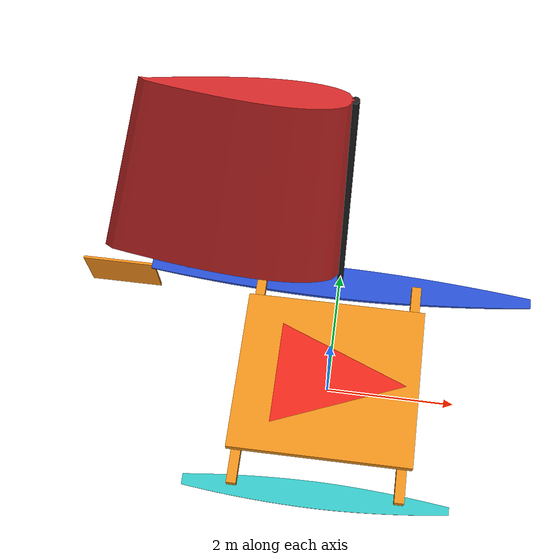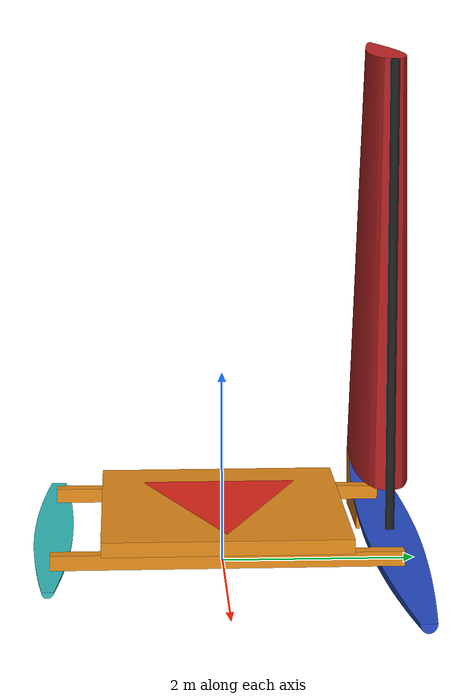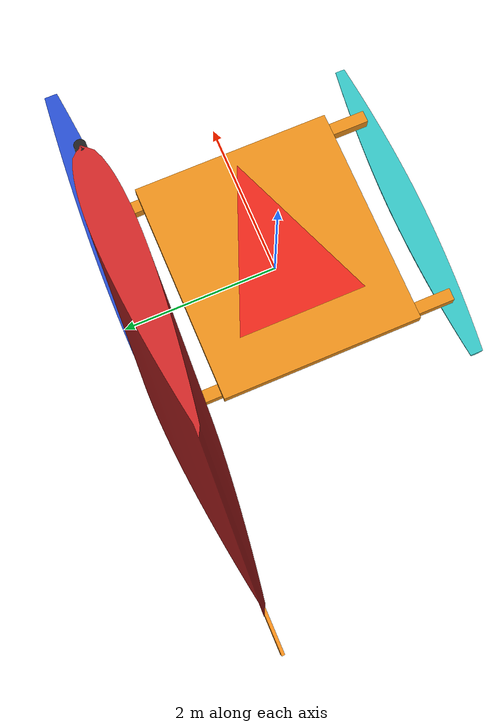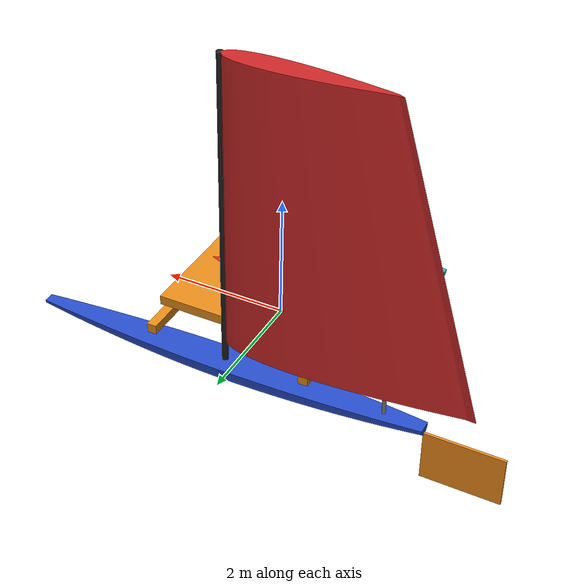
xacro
<?xml version="1.0"?>
<robot name="n3_urdf" xmlns:xacro="http://www.ros.org/wiki/xacro">

    <!-- MASSES -->
    <xacro:property name="hull_main_mass" value="50.0"/>
    <xacro:property name="hull_small_mass" value="25.0"/>
    <xacro:property name="deck_mass" value="18.0"/>
    <xacro:property name="cb_mass" value="8.0"/>
    <xacro:property name="mast_mass" value="3.0"/>
    <xacro:property name="sail_mass" value="40.0"/>
    <xacro:property name="rudder_mass" value="2.0"/>
    <xacro:property name="span" value="3.500"/>
    <xacro:property name="sail_chord" value="3.830"/>

    <!-- Z positions -->
    <xacro:property name="hull_top_z" value="0.315"/>
    <xacro:property name="beam_h" value="0.15"/>
    <xacro:property name="deck_h" value="0.15"/>

    <!-- INERTIE -->
    <xacro:macro name="box_inertia" params="m x y z">
        <inertial>
            <mass value="${m}"/>
            <inertia ixx="${m*(y*y+z*z)/12}" ixy="0" ixz="0"
                     iyy="${m*(x*x+z*z)/12}" iyz="0"
                     izz="${m*(x*x+y*y)/12}"/>
        </inertial>
    </xacro:macro>

    <xacro:macro name="cyl_inertia" params="m r h">
        <inertial>
            <mass value="${m}"/>
            <inertia ixx="${m*(3*r*r+h*h)/12}" ixy="0" ixz="0"
                     iyy="${m*(3*r*r+h*h)/12}" iyz="0"
                     izz="${m*r*r/2}"/>
        </inertial>
    </xacro:macro>

    <!-- ========================= BOAT LINK (DECK / URDF root) ========================= -->
    <!-- KDL warns about inertia on root link — harmless, ignore it -->
    <!-- Deck bottom on beam top = hull_top + beam_h -->
    <link name="boat_link">
        <xacro:box_inertia m="${deck_mass}" x="2.80" y="2.50" z="${deck_h}"/>
        <visual>
            <origin xyz="0 0 ${hull_top_z + beam_h + deck_h/2}" rpy="0 0 0"/>
            <geometry>
                <box size="2.80 2.50 ${deck_h}"/>
            </geometry>
            <material name="orange">
                <color rgba="0.90 0.55 0.10 1.0"/>
            </material>
        </visual>
        <collision>
            <origin xyz="0 0 ${hull_top_z + beam_h + deck_h/2}" rpy="0 0 0"/>
            <geometry>
                <box size="2.80 2.50 ${deck_h}"/>
            </geometry>
        </collision>
    </link>

    <!-- ========================= FLECHE DIRECTION (sur le pont) ========================= -->
    <link name="arrow_link">
        <inertial>
            <mass value="0.01"/>
            <inertia ixx="0.001" ixy="0" ixz="0" iyy="0.001" iyz="0" izz="0.001"/>
        </inertial>
        <visual>
            <geometry>
                <mesh filename="package://n3_urdf/meshes/arrow.dae"/>
            </geometry>
        </visual>
    </link>

    <joint name="arrow_joint" type="fixed">
        <parent link="boat_link"/>
        <child link="arrow_link"/>
        <!-- Sur le dessus du pont, deck top = hull_top + beam_h + deck_h -->
        <origin xyz="0 0 ${hull_top_z + beam_h + deck_h + 0.01}" rpy="0 0 0"/>
    </joint>

    <!-- ========================= FLOTTEUR PRINCIPAL (babord) ========================= -->
    <!-- Hull z=0 (local) = hull top = world hull_top_z -->
    <link name="hull_main_link">
        <xacro:box_inertia m="${hull_main_mass}" x="6.225" y="0.55" z="0.45"/>
        <visual>
            <geometry>
                <mesh filename="package://n3_urdf/meshes/hull_main.dae"/>
            </geometry>
        </visual>
        <collision>
            <geometry>
                <box size="6.225 0.55 0.45"/>
            </geometry>
        </collision>
    </link>

    <joint name="hull_main_joint" type="fixed">
        <parent link="boat_link"/>
        <child link="hull_main_link"/>
        <origin xyz="0 ${span/2} ${hull_top_z}" rpy="0 0 0"/>
    </joint>

    <!-- ========================= FLOTTEUR SECONDAIRE (tribord) ========================= -->
    <link name="hull_small_link">
        <xacro:box_inertia m="${hull_small_mass}" x="4.0" y="0.40" z="0.30"/>
        <visual>
            <geometry>
                <mesh filename="package://n3_urdf/meshes/hull_small.dae"/>
            </geometry>
        </visual>
        <collision>
            <geometry>
                <box size="4.0 0.40 0.30"/>
            </geometry>
        </collision>
    </link>

    <joint name="hull_small_joint" type="fixed">
        <parent link="boat_link"/>
        <child link="hull_small_link"/>
        <origin xyz="0 ${-span/2} ${hull_top_z}" rpy="0 0 0"/>
    </joint>

    <!-- ========================= BARRES TRANSVERSALES ========================= -->
    <!-- Beams on hull top, length = span (center to center of hulls) -->
    <link name="crossbeam_fwd_link">
        <xacro:box_inertia m="${cb_mass}" x="0.15" y="${span}" z="${beam_h}"/>
        <visual>
            <geometry>
                <box size="0.15 ${span} ${beam_h}"/>
            </geometry>
            <material name="orange">
                <color rgba="0.90 0.55 0.10 1.0"/>
            </material>
        </visual>
        <collision>
            <geometry>
                <box size="0.15 ${span} ${beam_h}"/>
            </geometry>
        </collision>
    </link>

    <joint name="crossbeam_fwd_joint" type="fixed">
        <parent link="boat_link"/>
        <child link="crossbeam_fwd_link"/>
        <origin xyz="1.25 0 ${hull_top_z + beam_h/2}" rpy="0 0 0"/>
    </joint>

    <link name="crossbeam_aft_link">
        <xacro:box_inertia m="${cb_mass}" x="0.15" y="${span}" z="${beam_h}"/>
        <visual>
            <geometry>
                <box size="0.15 ${span} ${beam_h}"/>
            </geometry>
            <material name="orange">
                <color rgba="0.90 0.55 0.10 1.0"/>
            </material>
        </visual>
        <collision>
            <geometry>
                <box size="0.15 ${span} ${beam_h}"/>
            </geometry>
        </collision>
    </link>

    <joint name="crossbeam_aft_joint" type="fixed">
        <parent link="boat_link"/>
        <child link="crossbeam_aft_link"/>
        <origin xyz="-1.25 0 ${hull_top_z + beam_h/2}" rpy="0 0 0"/>
    </joint>

    <!-- ========================= MAT (sur flotteur principal) ========================= -->
    <!-- Mast from hull top up to sail top: 0.40 (base) + 4.5 (sail) = 4.9 m -->
    <xacro:property name="mast_h" value="4.90"/>
    <link name="mast_link">
        <xacro:cyl_inertia m="${mast_mass}" r="0.05" h="${mast_h}"/>
        <visual>
            <origin xyz="0 0 ${mast_h/2}" rpy="0 0 0"/>
            <geometry>
                <cylinder radius="0.05" length="${mast_h}"/>
            </geometry>
            <material name="mast_mat">
                <color rgba="0.12 0.12 0.12 1.0"/>
            </material>
        </visual>
        <collision>
            <origin xyz="0 0 ${mast_h/2}" rpy="0 0 0"/>
            <geometry>
                <cylinder radius="0.05" length="${mast_h}"/>
            </geometry>
        </collision>
    </link>

    <joint name="mast_joint" type="fixed">
        <parent link="hull_main_link"/>
        <child link="mast_link"/>
        <!-- Mast bottom at hull top (z=0 in hull frame) -->
        <origin xyz="0 0 0" rpy="0 0 0"/>
    </joint>

    <!-- ========================= WING SAIL (NACA 0015, 4.5 m) ========================= -->
    <!--
      Sail mesh: leading edge at x=0 (vertical, aligned with mast).
      Chord extends aft (-X). No offset needed.
    -->
    <link name="sail_link">
        <inertial>
            <mass value="${sail_mass}"/>
            <origin xyz="${-sail_chord/2} 0 2.25"/>
            <inertia
                    ixx="${sail_mass*(0.58*0.58+4.5*4.5)/12}" ixy="0" ixz="0"
                    iyy="${sail_mass*(sail_chord*sail_chord+4.5*4.5)/12}" iyz="0"
                    izz="${sail_mass*(sail_chord*sail_chord+0.58*0.58)/12}"/>
        </inertial>
        <visual>
            <geometry>
                <mesh filename="package://n3_urdf/meshes/sail.dae"/>
            </geometry>
        </visual>
        <collision>
            <origin xyz="${-sail_chord/2} 0 2.25" rpy="0 0 0"/>
            <geometry>
                <box size="${sail_chord} 0.58 4.5"/>
            </geometry>
        </collision>
    </link>

    <joint name="sail_joint" type="continuous">
        <parent link="mast_link"/>
        <child link="sail_link"/>
        <origin xyz="0 0 0.40" rpy="0 0 0"/>
        <axis xyz="0 0 1"/>
        <dynamics damping="2.0" friction="0.5"/>
    </joint>

    <!-- ========================= SAFRAN (sur flotteur principal) ========================= -->
    <link name="rudder_link">
        <xacro:box_inertia m="${rudder_mass}" x="1.20" y="0.04" z="0.80"/>
        <visual>
            <origin xyz="0 0 0" rpy="0 0 0"/>
            <geometry>
                <mesh filename="package://n3_urdf/meshes/rudder.dae" scale="2.0 1.0 1.0"/>
            </geometry>
        </visual>
        <collision>
            <origin xyz="-0.60 0 -0.40" rpy="0 0 0"/>
            <geometry>
                <box size="1.20 0.04 0.80"/>
            </geometry>
        </collision>
    </link>

    <joint name="rudder_joint" type="continuous">
        <parent link="hull_main_link"/>
        <child link="rudder_link"/>
        <origin xyz="-3.10 0 -0.10" rpy="0 0 0"/>
        <axis xyz="0 0 1"/>
        <dynamics damping="1.0" friction="0.3"/>
    </joint>

    <!-- ========================= CAPTEURS (poupe flotteur principal) ========================= -->
    <!-- Sensor mast on main hull stern, carries GPS and anemometer -->
    <link name="sensor_mast_link">
        <xacro:cyl_inertia m="0.5" r="0.03" h="3.0"/>
        <visual>
            <origin xyz="0 0 1.5" rpy="0 0 0"/>
            <geometry>
                <cylinder radius="0.03" length="3.0"/>
            </geometry>
            <material name="sensor_mast_mat">
                <color rgba="0.5 0.5 0.5 1.0"/>
            </material>
        </visual>
        <collision>
            <origin xyz="0 0 1.5" rpy="0 0 0"/>
            <geometry>
                <cylinder radius="0.03" length="3.0"/>
            </geometry>
        </collision>
    </link>

    <joint name="sensor_mast_joint" type="fixed">
        <parent link="hull_main_link"/>
        <child link="sensor_mast_link"/>
        <!-- Stern of main hull, on top -->
        <origin xyz="-2.5 0 0" rpy="0 0 0"/>
    </joint>

    <!-- GPS link (on sensor mast, z=2.0 above hull top) -->
    <link name="gps_link">
        <xacro:box_inertia m="0.1" x="0.08" y="0.08" z="0.04"/>
        <visual>
            <geometry>
                <box size="0.08 0.08 0.04"/>
            </geometry>
            <material name="gps_mat">
                <color rgba="0.2 0.8 0.2 1.0"/>
            </material>
        </visual>
    </link>

    <joint name="gps_joint" type="fixed">
        <parent link="sensor_mast_link"/>
        <child link="gps_link"/>
        <origin xyz="0 0 2.0" rpy="0 0 0"/>
    </joint>

    <!-- Anemometer link (top of sensor mast, z=3.0 above hull top) -->
    <link name="anemo_link">
        <xacro:box_inertia m="0.1" x="0.06" y="0.06" z="0.10"/>
        <visual>
            <geometry>
                <cylinder radius="0.04" length="0.10"/>
            </geometry>
            <material name="anemo_mat">
                <color rgba="0.8 0.8 0.2 1.0"/>
            </material>
        </visual>
    </link>

    <joint name="anemo_joint" type="fixed">
        <parent link="sensor_mast_link"/>
        <child link="anemo_link"/>
        <origin xyz="0 0 3.0" rpy="0 0 0"/>
    </joint>

    <!-- ========================= GAZEBO ========================= -->
    <gazebo reference="boat_link">
        <material>Gazebo/Orange</material>
    </gazebo>
    <gazebo reference="hull_main_link">
        <material>Gazebo/Blue</material>
        <mu1>0.001</mu1>
        <mu2>0.001</mu2>
    </gazebo>
    <gazebo reference="hull_small_link">
        <material>Gazebo/TurquoiseGlow</material>
        <mu1>0.001</mu1>
        <mu2>0.001</mu2>
    </gazebo>
    <gazebo reference="crossbeam_fwd_link">
        <material>Gazebo/Orange</material>
    </gazebo>
    <gazebo reference="crossbeam_aft_link">
        <material>Gazebo/Orange</material>
    </gazebo>
    <gazebo reference="sail_link">
        <material>Gazebo/Red</material>
        <selfCollide>false</selfCollide>
    </gazebo>
    <gazebo reference="rudder_link">
        <material>Gazebo/Orange</material>
    </gazebo>
    <gazebo>
        <plugin name="joint_state_publisher"
                filename="libgazebo_ros_joint_state_publisher.so">
            <ros>
                <remapping>~/out:=joint_states</remapping>
            </ros>
            <update_rate>50</update_rate>
            <joint_name>sail_joint</joint_name>
            <joint_name>rudder_joint</joint_name>
        </plugin>
    </gazebo>

</robot>
